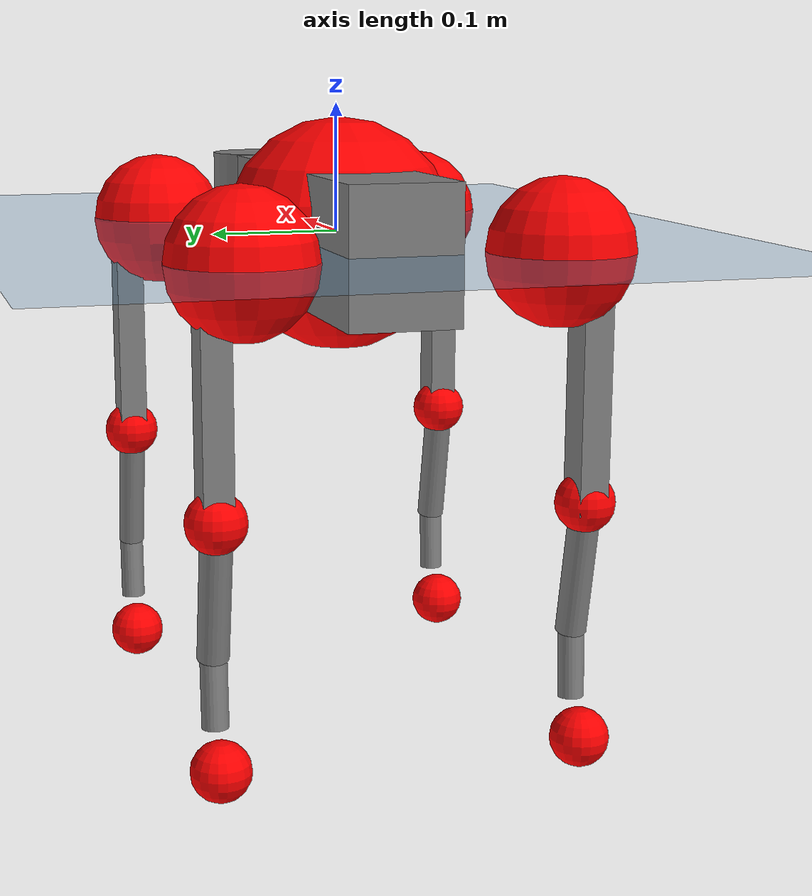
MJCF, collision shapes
<mujoco model="go2">
  <compiler angle="radian" assetdir="assets" balanceinertia="true" inertiafromgeom="false"/>

  <option timestep="0.005" density="1.2" viscosity="2e-05"/>

  <size nkey="1"/>

  <visual>
    <quality shadowsize="8192"/>
    <map shadowclip="0.5"/>
  </visual>

  <default>
    <default class="/">
      <geom contype="0" conaffinity="0" group="1" solref="-1000 -80"/>
      <site size="0.01 0.005 0.005" group="5"/>
      <general forcelimited="true" biastype="affine" gainprm="20" biasprm="0 -20 -0.5"/>
      <default class="go2">
        <joint armature="0.01" damping="0.01" frictionloss="0.2"/>
        <geom condim="1" margin="0.001"/>
        <default class="visual">
          <geom type="mesh" group="2"/>
        </default>
        <default class="collision">
          <geom group="3"/>
          <default class="foot">
            <geom size="0.022 0 0" condim="6" priority="1" friction="0.8 0.02 0.01" solimp="0.015 1 0.022"/>
          </default>
        </default>
        <default class="reward_collision_sphere">
          <geom group="5" rgba="1 0 0 1"/>
        </default>
      </default>
    </default>
  </default>

  <asset>
    <texture type="skybox" colorspace="auto" name="//unnamed_texture_0" builtin="gradient" rgb1="0.95 0.95 0.95" rgb2="0.95 0.95 0.95" width="100" height="600"/>
    <texture type="2d" colorspace="auto" name="texplane" builtin="checker" rgb1="0.345 0.575 0.748" rgb2="0.345 0.575 0.748" markrgb="1 1 1" width="512" height="512"/>
    <material name="MatPlane" class="/" texture="texplane" texuniform="true" texrepeat="2 2" specular="0.9"/>
    <material name="metal" class="/" rgba="0.9 0.95 0.95 1"/>
    <material name="black" class="/" rgba="0 0 0 1"/>
    <material name="white" class="/"/>
    <material name="gray" class="/" rgba="0.671705 0.692426 0.77427 1"/>
    <mesh name="base_0" class="/" file="base_0.obj"/>
    <mesh name="base_1" class="/" file="base_1.obj"/>
    <mesh name="base_2" class="/" file="base_2.obj"/>
    <mesh name="base_3" class="/" file="base_3.obj"/>
    <mesh name="base_4" class="/" file="base_4.obj"/>
    <mesh name="hip_0" class="/" file="hip_0.obj"/>
    <mesh name="hip_1" class="/" file="hip_1.obj"/>
    <mesh name="thigh_0" class="/" file="thigh_0.obj"/>
    <mesh name="thigh_1" class="/" file="thigh_1.obj"/>
    <mesh name="thigh_mirror_0" class="/" file="thigh_mirror_0.obj"/>
    <mesh name="thigh_mirror_1" class="/" file="thigh_mirror_1.obj"/>
    <mesh name="calf_0" class="/" file="calf_0.obj"/>
    <mesh name="calf_1" class="/" file="calf_1.obj"/>
    <mesh name="calf_mirror_0" class="/" file="calf_mirror_0.obj"/>
    <mesh name="calf_mirror_1" class="/" file="calf_mirror_1.obj"/>
    <mesh name="foot" class="/" file="foot.obj"/>
  </asset>

  <worldbody>
    <geom name="floor" class="/" size="100 100 0.125" type="plane" group="0" material="MatPlane"/>
    <light name="toplight_shadow" class="/" pos="0 0 5" dir="0.0990148 0.0990148 -0.990148" type="directional" ambient="0.04 0.04 0.04" diffuse="0.55 0.55 0.55" specular="0.12 0.12 0.12"/>
    <light name="toplight_fill" class="/" pos="0 0 5" dir="0.0990148 0.0990148 -0.990148" type="directional" castshadow="false" ambient="0.04 0.04 0.04" diffuse="0.3 0.3 0.3" specular="0.08 0.08 0.08"/>
    <body name="trunk" childclass="go2" pos="0.000507757 -0.00257246 -0.0020503" quat="0.999999 -0.000687673 0.000965335 0.00047755">
      <inertial pos="0.0157713 3.42747e-05 -0.00240418" quat="-0.00425818 0.712137 -0.015182 0.701863" mass="5.50207" diaginertia="0.0591566 0.0956287 0.0126419"/>
      <joint name="//unnamed_joint_0" type="free" armature="0" damping="0" frictionloss="0"/>
      <geom name="//unnamed_geom_1" class="visual" material="black" mesh="base_0"/>
      <geom name="//unnamed_geom_2" class="visual" material="black" mesh="base_1"/>
      <geom name="//unnamed_geom_3" class="visual" material="black" mesh="base_2"/>
      <geom name="//unnamed_geom_4" class="visual" material="white" mesh="base_3"/>
      <geom name="//unnamed_geom_5" class="visual" material="gray" mesh="base_4"/>
      <geom name="trunk_1" class="collision" size="0.172928 0.0429792 0.0524024" type="box"/>
      <geom name="trunk_2" class="collision" size="0.045967 0.0413703" pos="0.253279 0 0.00873113" type="cylinder"/>
      <geom name="trunk_3" class="collision" size="0.043209" pos="0.260389 0 -0.0523868"/>
      <geom name="//unnamed_geom_9" class="reward_collision_sphere" size="0.091934"/>
      <geom name="//unnamed_geom_10" class="reward_collision_sphere" size="0.0551604" pos="0.248836 0 -0.0392901"/>
      <site name="imu" pos="-0.0199345 -0.00492761 0.032003" size="0.0091934"/>
      <camera name="track" pos="0 -1.99242 0" quat="0.707107 0.707107 0 0" mode="trackcom"/>
      <camera name="ego_camera" pos="0.277274 0 0.0392901" quat="-0.5 -0.5 0.5 0.5"/>
      <body name="FL_hip" pos="0.169888 0.0452584 -0.000317517" quat="1 1.23901e-05 -3.95888e-05 2.30931e-05">
        <inertial pos="-0.00458275 0.000322638 -0.00137601" quat="0.499161 0.49932 0.501775 0.499739" mass="0.52775" diaginertia="0.000501856 0.000571536 0.000249626"/>
        <joint name="FL_hip_joint" pos="0 0 0" axis="0.999899 0.0139424 -0.00278095" stiffness="0.00226561" range="-1.10687 1.03867" armature="0.00962875" damping="0.0112086" frictionloss="0.184628"/>
        <geom name="//unnamed_geom_11" class="visual" material="metal" mesh="hip_0"/>
        <geom name="//unnamed_geom_12" class="visual" material="gray" mesh="hip_1"/>
        <geom name="//unnamed_geom_13" class="collision" size="0.0422896 0.0183868" pos="0 0.0796968 0" quat="0.707107 0.707107 0 0" type="cylinder"/>
        <geom name="//unnamed_geom_14" class="reward_collision_sphere" size="0.0551604" pos="0 0.0697347 0"/>
        <body name="FL_thigh" pos="0.00158 0.0977521 0.000193332" quat="1 2.4018e-05 9.05342e-05 6.1479e-05">
          <inertial pos="-0.0025365 -0.0226222 -0.0281373" quat="0.835078 0.0848508 -0.0118155 0.54342" mass="0.92559" diaginertia="0.00324481 0.00573375 0.000446784"/>
          <joint name="FL_thigh_joint" pos="0 0 0" axis="0.00717244 0.999912 -0.0111218" stiffness="0.0165512" range="-1.6212 3.47547" armature="0.00913485" damping="0.00905563" frictionloss="0.157975"/>
          <geom name="//unnamed_geom_15" class="visual" material="metal" mesh="thigh_0"/>
          <geom name="//unnamed_geom_16" class="visual" material="gray" mesh="thigh_1"/>
          <geom name="//unnamed_geom_17" class="collision" size="0.0979097 0.0112619 0.0156288" pos="0 0 -0.0929865" quat="0.707107 0 0.707107 0" type="box"/>
          <body name="FL_calf" pos="0.00147304 -0.000139004 -0.186633" quat="1 0.000451608 0.000229284 -0.000131509">
            <inertial pos="0.0044083 -0.0032905 -0.125037" quat="0.703477 0.00154317 0.00163253 0.710714" mass="0.186405" diaginertia="0.000798326 0.00140024 2.62415e-05"/>
            <joint name="FL_calf_joint" pos="0 0 0" axis="0.0028869 0.999994 -0.00208952" stiffness="0.0113931" range="-2.73074 -0.800488" armature="0.00777836" damping="0" frictionloss="0.204126"/>
            <geom name="//unnamed_geom_18" class="visual" material="gray" mesh="calf_0"/>
            <geom name="//unnamed_geom_19" class="visual" material="black" mesh="calf_1"/>
            <geom name="FL_calf0" class="collision" size="0.0110321 0.0551604" pos="0.00710959 0 -0.0523868" quat="0.994493 0 -0.104807 0" type="cylinder"/>
            <geom name="//unnamed_geom_21" class="collision" size="0.0101127 0.0298786" pos="0.017774 0 -0.129221" quat="0.999688 0 0.0249974 0" type="cylinder"/>
            <geom name="//unnamed_geom_22" class="visual" pos="0 0 -0.185973" quat="1 0 0 0" material="black" mesh="foot"/>
            <geom name="FL_foot" class="foot" size="0.0155472" pos="-0.0017774 0 -0.185973"/>
            <geom name="//unnamed_geom_24" class="reward_collision_sphere" size="0.0229835"/>
            <geom name="//unnamed_geom_25" class="reward_collision_sphere" size="0.0229835" pos="-0.0017774 0 -0.185973"/>
            <site name="FL_foot" class="foot" pos="-0.0017774 0 -0.185973" size="0.0091934"/>
          </body>
        </body>
      </body>
      <body name="FR_hip" pos="0.171972 -0.0487364 -0.000972107" quat="1 3.14233e-05 0.000103658 -2.26389e-05">
        <inertial pos="-0.00418629 0.000678174 -0.00264798" quat="0.49597 0.508969 0.496878 0.498073" mass="0.50627" diaginertia="0.000471386 0.000585269 0.000248565"/>
        <joint name="FR_hip_joint" pos="0 0 0" axis="0.999905 0.00123473 0.0137035" stiffness="0.00691042" range="-1.05424 1.07966" armature="0.00794849" damping="0.0128645" frictionloss="0.200731"/>
        <geom name="//unnamed_geom_26" class="visual" pos="0 1.07237e-09 4.59962e-08" quat="4.63268e-05 1 0 0" material="metal" mesh="hip_0"/>
        <geom name="//unnamed_geom_27" class="visual" pos="0 1.73844e-09 -1.13766e-07" quat="4.63268e-05 1 0 0" material="gray" mesh="hip_1"/>
        <geom name="//unnamed_geom_28" class="collision" size="0.0422896 0.0183868" pos="0 -0.0796968 0" quat="0.707107 0.707107 0 0" type="cylinder"/>
        <geom name="//unnamed_geom_29" class="reward_collision_sphere" size="0.0551604" pos="0 -0.0697347 0"/>
        <body name="FR_thigh" pos="-0.00153606 -0.0950853 0.00253771" quat="1 4.49073e-05 0.00016579 -0.000248107">
          <inertial pos="-0.000354697 0.019712 -0.0279187" quat="0.55347 -0.00887623 0.0877765 0.828183" mass="0.911573" diaginertia="0.00317585 0.00571331 0.00044442"/>
          <joint name="FR_thigh_joint" pos="0 0 0" axis="0.000323868 -0.999995 -0.00301182" range="-3.47201 1.61093" armature="0.00874732" damping="0.0159373" frictionloss="0.159057"/>
          <geom name="//unnamed_geom_30" class="visual" material="metal" mesh="thigh_mirror_0"/>
          <geom name="//unnamed_geom_31" class="visual" material="gray" mesh="thigh_mirror_1"/>
          <geom name="//unnamed_geom_32" class="collision" size="0.0979097 0.0112619 0.0156288" pos="0 0 -0.0929865" quat="0.707107 0 0.707107 0" type="box"/>
          <body name="FR_calf" pos="-0.00334646 6.30028e-05 -0.184003" quat="1 0.000498824 -0.000221557 0.000147104">
            <inertial pos="0.00292511 0.00323746 -0.123604" quat="0.697227 0.00505878 0.00412844 0.71682" mass="0.186947" diaginertia="0.000797752 0.00147553 2.59685e-05"/>
            <joint name="FR_calf_joint" pos="0 0 0" axis="0.00155321 -0.999999 0.000496314" range="0.877661 2.75414" armature="0.00911238" damping="0.00251607" frictionloss="0.161525"/>
            <geom name="//unnamed_geom_33" class="visual" material="gray" mesh="calf_mirror_0"/>
            <geom name="//unnamed_geom_34" class="visual" material="black" mesh="calf_mirror_1"/>
            <geom name="FR_calf0" class="collision" size="0.0119514 0.0551604" pos="0.00888698 0 -0.0523868" quat="0.995004 0 -0.0998334 0" type="cylinder"/>
            <geom name="//unnamed_geom_36" class="collision" size="0.0101127 0.0298786" pos="0.017774 0 -0.129221" quat="0.999688 0 0.0249974 0" type="cylinder"/>
            <geom name="//unnamed_geom_37" class="visual" pos="0 0 -0.185973" quat="1 0 0 0" material="black" mesh="foot"/>
            <geom name="FR_foot" class="foot" size="0.0207914" pos="-0.0017774 0 -0.185973"/>
            <geom name="//unnamed_geom_39" class="reward_collision_sphere" size="0.0229835"/>
            <geom name="//unnamed_geom_40" class="reward_collision_sphere" size="0.0229835" pos="-0.0017774 0 -0.185973"/>
            <site name="FR_foot" class="foot" pos="-0.0017774 0 -0.185973" size="0.0091934"/>
          </body>
        </body>
      </body>
      <body name="RL_hip" pos="-0.1718 0.0490421 -8.60695e-05" quat="1 0.000163639 3.42299e-05 3.72695e-05">
        <inertial pos="0.00566371 0.00146782 0.0027372" quat="0.50136 0.502802 0.495442 0.500365" mass="0.513013" diaginertia="0.000469669 0.000546417 0.000244055"/>
        <joint name="RL_hip_joint" pos="0 0 0" axis="-0.999817 0.016025 -0.0104716" stiffness="0.00305371" range="-1.0194 0.994413" armature="0.00864902" damping="0.0136991" frictionloss="0.203143"/>
        <geom name="//unnamed_geom_41" class="visual" pos="-1.35779e-10 0 -2.66157e-08" quat="4.63268e-05 0 1 0" material="metal" mesh="hip_0"/>
        <geom name="//unnamed_geom_42" class="visual" pos="-2.20113e-10 0 -2.36043e-08" quat="4.63268e-05 0 1 0" material="gray" mesh="hip_1"/>
        <geom name="//unnamed_geom_43" class="collision" size="0.0422896 0.0183868" pos="0 0.0796968 0" quat="0.707107 0.707107 0 0" type="cylinder"/>
        <geom name="//unnamed_geom_44" class="reward_collision_sphere" size="0.0551604" pos="0 0.0697347 0"/>
        <body name="RL_thigh" pos="-0.000347389 0.0917163 0.00281904" quat="1 -0.000235116 -8.38267e-05 -0.000290146">
          <inertial pos="-0.00306018 -0.0230648 -0.0261144" quat="0.829538 0.0768132 -0.0271238 0.552477" mass="0.895391" diaginertia="0.0031865 0.00593968 0.000453082"/>
          <joint name="RL_thigh_joint" pos="0 0 0" axis="-0.00024333 0.999995 -0.00321975" range="-0.519101 4.55846" armature="0.0103655" damping="0.0192125" frictionloss="0.158192"/>
          <geom name="//unnamed_geom_45" class="visual" material="metal" mesh="thigh_0"/>
          <geom name="//unnamed_geom_46" class="visual" material="gray" mesh="thigh_1"/>
          <geom name="//unnamed_geom_47" class="collision" size="0.0979097 0.0112619 0.0156288" pos="0 0 -0.0929865" quat="0.707107 0 0.707107 0" type="box"/>
          <body name="RL_calf" pos="-0.00217608 -0.000212656 -0.184573" quat="0.999999 -0.000803822 -0.00101495 0.000727707">
            <inertial pos="0.00465146 0.00105859 -0.122871" quat="0.712257 0.00226767 -0.008515 0.701863" mass="0.183661" diaginertia="0.000805145 0.00140133 2.63957e-05"/>
            <joint name="RL_calf_joint" pos="0 0 0" axis="-0.0010715 0.999999 0.00078861" stiffness="0.001519" range="-2.72344 -0.838972" armature="0.00906021" damping="0.0143062" frictionloss="0.159535"/>
            <geom name="//unnamed_geom_48" class="visual" material="gray" mesh="calf_0"/>
            <geom name="//unnamed_geom_49" class="visual" material="black" mesh="calf_1"/>
            <geom name="RL_calf0" class="collision" size="0.0119514 0.0551604" pos="0.00888698 0 -0.0523868" quat="0.995004 0 -0.0998334 0" type="cylinder"/>
            <geom name="//unnamed_geom_51" class="collision" size="0.0101127 0.0298786" pos="0.017774 0 -0.129221" quat="0.999688 0 0.0249974 0" type="cylinder"/>
            <geom name="//unnamed_geom_52" class="visual" pos="0 0 -0.185973" quat="1 0 0 0" material="black" mesh="foot"/>
            <geom name="RL_foot" class="foot" size="0.0176924" pos="-0.0017774 0 -0.185973"/>
            <geom name="//unnamed_geom_54" class="reward_collision_sphere" size="0.0229835"/>
            <geom name="//unnamed_geom_55" class="reward_collision_sphere" size="0.0229835" pos="-0.0017774 0 -0.185973"/>
            <site name="RL_foot" class="foot" pos="-0.0017774 0 -0.185973" size="0.0091934"/>
          </body>
        </body>
      </body>
      <body name="RR_hip" pos="-0.171987 -0.0476695 0.000400642" quat="1 0.000328995 0.00019254 -0.000130178">
        <inertial pos="0.00381775 -0.00377609 0.000706915" quat="0.498974 0.497876 0.497748 0.505362" mass="0.508075" diaginertia="0.000471515 0.000578657 0.000232616"/>
        <joint name="RR_hip_joint" pos="0 0 0" axis="-0.999996 0.00250722 -0.00139867" stiffness="0.00425532" range="-1.06246 1.09835" armature="0.00955757" damping="0.00578466" frictionloss="0.20889"/>
        <geom name="//unnamed_geom_56" class="visual" pos="1.395e-10 1.07237e-09 -7.26119e-08" quat="2.14617e-09 4.63268e-05 4.63268e-05 -1" material="metal" mesh="hip_0"/>
        <geom name="//unnamed_geom_57" class="visual" pos="2.10907e-10 1.73844e-09 9.01618e-08" quat="2.14617e-09 4.63268e-05 4.63268e-05 -1" material="gray" mesh="hip_1"/>
        <geom name="//unnamed_geom_58" class="collision" size="0.0422896 0.0183868" pos="0 -0.0796968 0" quat="0.707107 0.707107 0 0" type="cylinder"/>
        <geom name="//unnamed_geom_59" class="reward_collision_sphere" size="0.0551604" pos="0 -0.0697347 0"/>
        <body name="RR_thigh" pos="-0.00241698 -0.0936239 -0.00390154" quat="0.999999 0.000571184 0.000970451 -0.000352654">
          <inertial pos="-0.00255281 0.0201325 -0.0276948" quat="0.551936 -0.0197022 0.0855423 0.829253" mass="0.93165" diaginertia="0.0033683 0.00568373 0.000438104"/>
          <joint name="RR_thigh_joint" pos="0 0 0" axis="-0.00122054 -0.999987 0.00499443" stiffness="0.00556942" range="-4.55818 0.515325" armature="0.00919328" damping="0.018143" frictionloss="0.192012"/>
          <geom name="//unnamed_geom_60" class="visual" material="metal" mesh="thigh_mirror_0"/>
          <geom name="//unnamed_geom_61" class="visual" material="gray" mesh="thigh_mirror_1"/>
          <geom name="//unnamed_geom_62" class="collision" size="0.0979097 0.0112619 0.0156288" pos="0 0 -0.0929865" quat="0.707107 0 0.707107 0" type="box"/>
          <body name="RR_calf" pos="0.0031834 -0.000797685 -0.184644" quat="1 2.36846e-06 4.52152e-06 -1.80118e-05">
            <inertial pos="0.00263035 0.000358839 -0.124395" quat="0.703388 -0.00371651 0.00110663 0.710796" mass="0.194291" diaginertia="0.000848274 0.00149172 2.72718e-05"/>
            <joint name="RR_calf_joint" pos="0 0 0" axis="0.00635342 -0.999973 -0.00364385" stiffness="0.0018712" range="0.859234 2.78018" armature="0.00940476" damping="0.0118437" frictionloss="0.209632"/>
            <geom name="//unnamed_geom_63" class="visual" material="gray" mesh="calf_mirror_0"/>
            <geom name="//unnamed_geom_64" class="visual" material="black" mesh="calf_mirror_1"/>
            <geom name="RR_calf0" class="collision" size="0.0119514 0.0551604" pos="0.00888698 0 -0.0523868" quat="0.995004 0 -0.0998334 0" type="cylinder"/>
            <geom name="//unnamed_geom_66" class="collision" size="0.0101127 0.0298786" pos="0.017774 0 -0.129221" quat="0.999688 0 0.0249974 0" type="cylinder"/>
            <geom name="//unnamed_geom_67" class="visual" pos="0 0 -0.185973" quat="1 0 0 0" material="black" mesh="foot"/>
            <geom name="RR_foot" class="foot" size="0.0197317" pos="-0.0017774 0 -0.185973"/>
            <geom name="//unnamed_geom_69" class="reward_collision_sphere" size="0.0229835"/>
            <geom name="//unnamed_geom_70" class="reward_collision_sphere" size="0.0229835" pos="-0.0017774 0 -0.185973"/>
            <site name="RR_foot" class="foot" pos="-0.0017774 0 -0.185973" size="0.0091934"/>
          </body>
        </body>
      </body>
    </body>
  </worldbody>

  <contact>
    <pair class="/" geom1="floor" geom2="FL_foot" name="//unnamed_contact_0"/>
    <pair class="/" geom1="floor" geom2="FR_foot" name="//unnamed_contact_1"/>
    <pair class="/" geom1="floor" geom2="RL_foot" name="//unnamed_contact_2"/>
    <pair class="/" geom1="floor" geom2="RR_foot" name="//unnamed_contact_3"/>
  </contact>

  <actuator>
    <general name="FL_hip" class="/" joint="FL_hip_joint" forcerange="-24.0163 24.0163" gainprm="18.6349" biasprm="0 -18.6349 -0.449711"/>
    <general name="FL_thigh" class="/" joint="FL_thigh_joint" forcerange="-21.5075 21.5075" gainprm="18.6349" biasprm="0 -18.6349 -0.449711"/>
    <general name="FL_calf" class="/" joint="FL_calf_joint" forcerange="-39.9423 39.9423" gainprm="18.6349" biasprm="0 -18.6349 -0.449711"/>
    <general name="FR_hip" class="/" joint="FR_hip_joint" forcerange="-19.4583 19.4583" gainprm="18.6349" biasprm="0 -18.6349 -0.449711"/>
    <general name="FR_thigh" class="/" joint="FR_thigh_joint" forcerange="-22.534 22.534" gainprm="18.6349" biasprm="0 -18.6349 -0.449711"/>
    <general name="FR_calf" class="/" joint="FR_calf_joint" forcerange="-37.9373 37.9373" gainprm="18.6349" biasprm="0 -18.6349 -0.449711"/>
    <general name="RL_hip" class="/" joint="RL_hip_joint" forcerange="-20.0124 20.0124" gainprm="18.6349" biasprm="0 -18.6349 -0.449711"/>
    <general name="RL_thigh" class="/" joint="RL_thigh_joint" forcerange="-22.4467 22.4467" gainprm="18.6349" biasprm="0 -18.6349 -0.449711"/>
    <general name="RL_calf" class="/" joint="RL_calf_joint" forcerange="-45.1331 45.1331" gainprm="18.6349" biasprm="0 -18.6349 -0.449711"/>
    <general name="RR_hip" class="/" joint="RR_hip_joint" forcerange="-19.5295 19.5295" gainprm="18.6349" biasprm="0 -18.6349 -0.449711"/>
    <general name="RR_thigh" class="/" joint="RR_thigh_joint" forcerange="-23.7516 23.7516" gainprm="18.6349" biasprm="0 -18.6349 -0.449711"/>
    <general name="RR_calf" class="/" joint="RR_calf_joint" forcerange="-43.2051 43.2051" gainprm="18.6349" biasprm="0 -18.6349 -0.449711"/>
  </actuator>

  <sensor>
    <gyro site="imu" name="imu_angular_velocity"/>
    <velocimeter site="imu" name="imu_linear_velocity"/>
    <framelinvel objtype="site" objname="FL_foot" name="FL_foot_global_linear_velocity"/>
    <framelinvel objtype="site" objname="FR_foot" name="FR_foot_global_linear_velocity"/>
    <framelinvel objtype="site" objname="RL_foot" name="RL_foot_global_linear_velocity"/>
    <framelinvel objtype="site" objname="RR_foot" name="RR_foot_global_linear_velocity"/>
  </sensor>

  <keyframe>
    <key name="home" qpos="0 0 0.325 1 0 0 0 0.1 0.8 -1.5 -0.1 -0.8 1.5 -0.1 0.8 -1.5 0.1 -0.8 1.5"/>
  </keyframe>
</mujoco>
